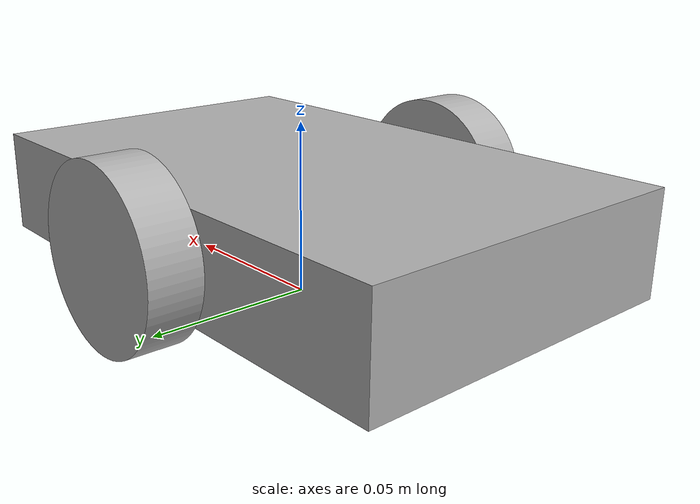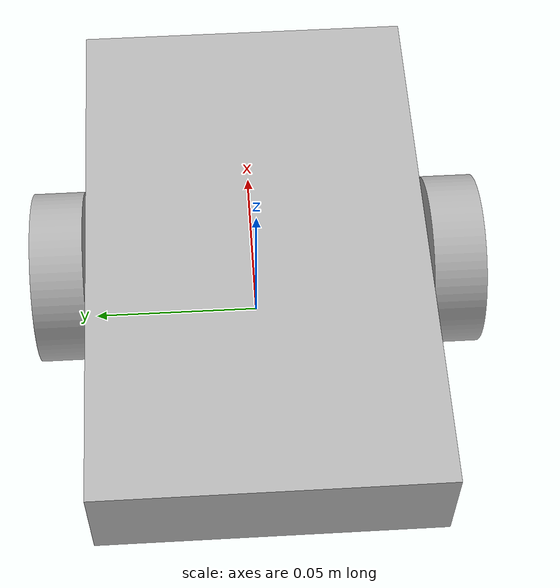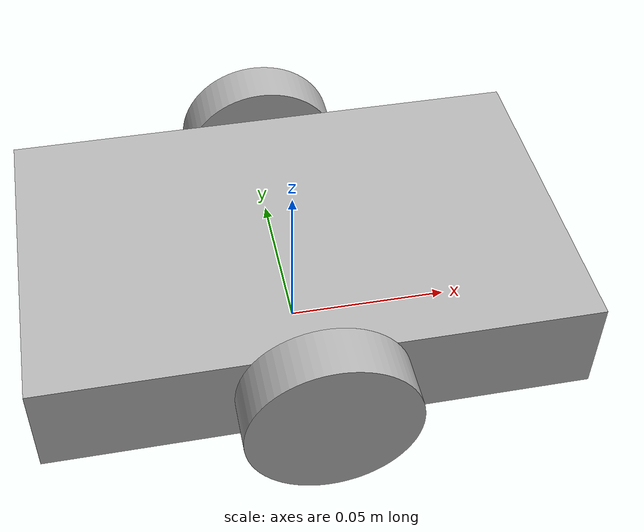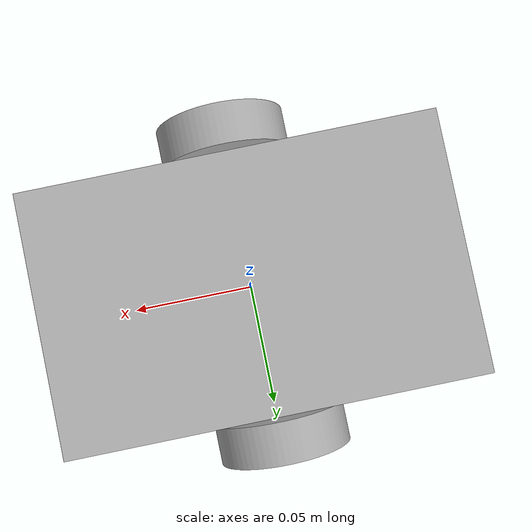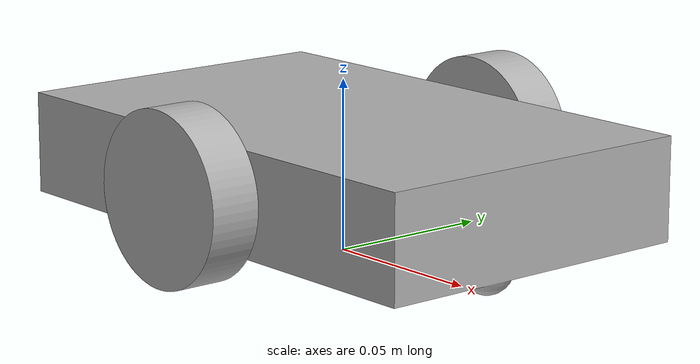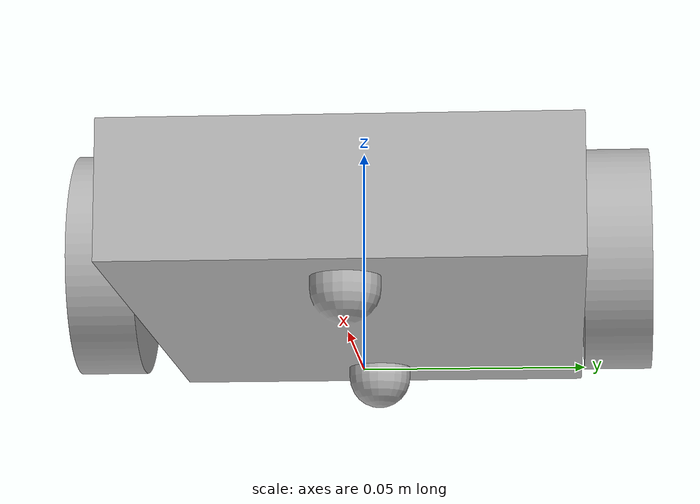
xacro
<?xml version="1.0" ?>
<robot name="movable_bot" xmlns:xacro="http://www.ros.org/wiki/xacro">

<xacro:include filename="$(find movable_bot_description)/urdf/materials.xacro" />
<xacro:include filename="$(find movable_bot_description)/urdf/movable_bot.trans" />
<xacro:include filename="$(find movable_bot_description)/urdf/movable_bot.gazebo" />
<link name="base_link">
  <inertial>
    <origin xyz="-0.0006238176333204855 0.0 0.02489588079194013" rpy="0 0 0"/>
    <mass value="3.788808142591512"/>
    <inertia ixx="0.00343" iyy="0.008404" izz="0.011254" ixy="0.0" iyz="0.0" ixz="0.0"/>
  </inertial>
  <visual>
    <origin xyz="0 0 0" rpy="0 0 0"/>
    <geometry>
      <mesh filename="file://$(find movable_bot_description)/meshes/base_link.stl" scale="0.001 0.001 0.001"/>
    </geometry>
    <material name="silver"/>
  </visual>
  <collision>
    <origin xyz="0 0 0" rpy="0 0 0"/>
    <geometry>
      <mesh filename="file://$(find movable_bot_description)/meshes/base_link.stl" scale="0.001 0.001 0.001"/>
    </geometry>
  </collision>
</link>

<link name="right_wheel_1">
  <inertial>
    <origin xyz="-2.6256067903792507e-07 -0.007500000000000007 3.469446951953614e-18" rpy="0 0 0"/>
    <mass value="0.23120158435012378"/>
    <inertia ixx="4e-05" iyy="7.2e-05" izz="4e-05" ixy="-0.0" iyz="0.0" ixz="0.0"/>
  </inertial>
  <visual>
    <origin xyz="0.000627 0.05 -0.025" rpy="0 0 0"/>
    <geometry>
      <mesh filename="file://$(find movable_bot_description)/meshes/right_wheel_1.stl" scale="0.001 0.001 0.001"/>
    </geometry>
    <material name="silver"/>
  </visual>
  <collision>
    <origin xyz="0.000627 0.05 -0.025" rpy="0 0 0"/>
    <geometry>
      <mesh filename="file://$(find movable_bot_description)/meshes/right_wheel_1.stl" scale="0.001 0.001 0.001"/>
    </geometry>
  </collision>
</link>

<link name="left_wheel_1">
  <inertial>
    <origin xyz="-2.6256067903792507e-07 0.007499999999999986 3.469446951953614e-18" rpy="0 0 0"/>
    <mass value="0.23120158435012378"/>
    <inertia ixx="4e-05" iyy="7.2e-05" izz="4e-05" ixy="0.0" iyz="-0.0" ixz="0.0"/>
  </inertial>
  <visual>
    <origin xyz="0.000627 -0.05 -0.025" rpy="0 0 0"/>
    <geometry>
      <mesh filename="file://$(find movable_bot_description)/meshes/left_wheel_1.stl" scale="0.001 0.001 0.001"/>
    </geometry>
    <material name="silver"/>
  </visual>
  <collision>
    <origin xyz="0.000627 -0.05 -0.025" rpy="0 0 0"/>
    <geometry>
      <mesh filename="file://$(find movable_bot_description)/meshes/left_wheel_1.stl" scale="0.001 0.001 0.001"/>
    </geometry>
  </collision>
</link>

<joint name="Rev1" type="continuous">
  <origin xyz="-0.000627 -0.05 0.025" rpy="0 0 0"/>
  <parent link="base_link"/>
  <child link="right_wheel_1"/>
  <axis xyz="0.0 -1.0 0.0"/>
</joint>

<joint name="Rev2" type="continuous">
  <origin xyz="-0.000627 0.05 0.025" rpy="0 0 0"/>
  <parent link="base_link"/>
  <child link="left_wheel_1"/>
  <axis xyz="0.0 1.0 0.0"/>
</joint>

</robot>

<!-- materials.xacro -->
<robot name="movable_bot" xmlns:xacro="http://www.ros.org/wiki/xacro" >

<material name="silver">
  <color rgba="0.700 0.700 0.700 1.000"/>
</material>

</robot>

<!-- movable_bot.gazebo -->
<robot name="movable_bot" xmlns:xacro="http://www.ros.org/wiki/xacro" >

<xacro:property name="body_color" value="Gazebo/Silver" />

<gazebo>
  <plugin name="control" filename="libgazebo_ros_control.so"/>
</gazebo>
<gazebo reference="base_link">
  <material>${body_color}</material>
  <mu1>0.2</mu1>
  <mu2>0.2</mu2>
  <self_collide>true</self_collide>
  <gravity>true</gravity>
</gazebo>

<gazebo reference="right_wheel_1">
  <material>${body_color}</material>
  <mu1>0.2</mu1>
  <mu2>0.2</mu2>
  <self_collide>true</self_collide>
</gazebo>

<gazebo reference="left_wheel_1">
  <material>${body_color}</material>
  <mu1>0.2</mu1>
  <mu2>0.2</mu2>
  <self_collide>true</self_collide>
</gazebo>

</robot>
